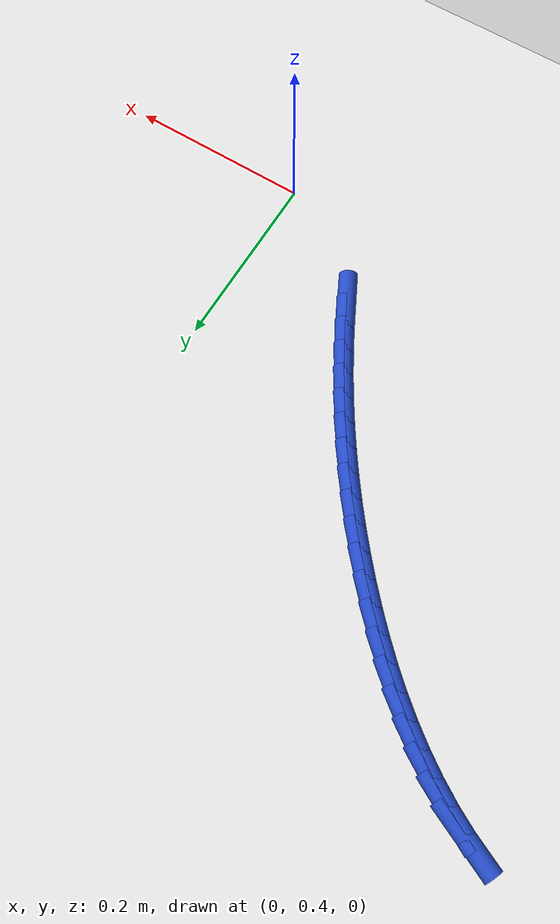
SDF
<sdf version="1.6">
 <world name="default">
  <model name="ground_plane">
   <static>1</static>
   <link name="link">
    <collision name="collision">
     <geometry><plane><normal>0 0 1</normal><size>100 100</size></plane></geometry>
     <surface><friction><ode><mu>100</mu><mu2>50</mu2></ode></friction></surface>
    </collision>
    <visual name="visual">
     <cast_shadows>0</cast_shadows>
     <geometry><plane><normal>0 0 1</normal><size>100 100</size></plane></geometry>
     <material>
      <script><uri>file://media/materials/scripts/gazebo.material</uri><name>Gazebo/WhiteGlow</name></script>
     </material>
    </visual>
   </link>
  </model>
  <model name="line">
   <link name="link_19">
    <pose>-0.12430611511360823 0.4978048859613617 0.01 0 1.57 -1.0902462654132137</pose>
    <collision name="collision">
     <geometry><cylinder><radius>0.01</radius><length>0.08</length></cylinder></geometry>
    </collision>
    <visual name="visual">
     <material>
      <script><name>Gazebo/Blue</name><uri>file://media/materials/scripts/gazebo.material</uri></script>
     </material>
     <geometry><cylinder><radius>0.01</radius><length>0.08</length></cylinder></geometry>
    </visual>
   </link>
   <link name="link_20">
    <pose>-0.13686574547439168 0.5218973179715002 0.01 0 1.57 -1.0674228626646705</pose>
    <collision name="collision">
     <geometry><cylinder><radius>0.01</radius><length>0.08</length></cylinder></geometry>
    </collision>
    <visual name="visual">
     <material>
      <script><name>Gazebo/Blue</name><uri>file://media/materials/scripts/gazebo.material</uri></script>
     </material>
     <geometry><cylinder><radius>0.01</radius><length>0.08</length></cylinder></geometry>
    </visual>
   </link>
   <link name="link_21">
    <pose>-0.14995568107336096 0.5456673432919278 0.01 0 1.57 -1.044369132323076</pose>
    <collision name="collision">
     <geometry><cylinder><radius>0.01</radius><length>0.08</length></cylinder></geometry>
    </collision>
    <visual name="visual">
     <material>
      <script><name>Gazebo/Blue</name><uri>file://media/materials/scripts/gazebo.material</uri></script>
     </material>
     <geometry><cylinder><radius>0.01</radius><length>0.08</length></cylinder></geometry>
    </visual>
   </link>
   <link name="link_22">
    <pose>-0.16357623414456696 0.5691054855569764 0.01 0 1.57 -1.020920529568022</pose>
    <collision name="collision">
     <geometry><cylinder><radius>0.01</radius><length>0.08</length></cylinder></geometry>
    </collision>
    <visual name="visual">
     <material>
      <script><name>Gazebo/Blue</name><uri>file://media/materials/scripts/gazebo.material</uri></script>
     </material>
     <geometry><cylinder><radius>0.01</radius><length>0.08</length></cylinder></geometry>
    </visual>
   </link>
   <link name="link_23">
    <pose>-0.1777366901418348 0.5922082147837116 0.01 0 1.57 -0.9971010919846204</pose>
    <collision name="collision">
     <geometry><cylinder><radius>0.01</radius><length>0.08</length></cylinder></geometry>
    </collision>
    <visual name="visual">
     <material>
      <script><name>Gazebo/Blue</name><uri>file://media/materials/scripts/gazebo.material</uri></script>
     </material>
     <geometry><cylinder><radius>0.01</radius><length>0.08</length></cylinder></geometry>
    </visual>
   </link>
   <link name="link_24">
    <pose>-0.19244665883658618 0.6149722159083256 0.01 0 1.57 -0.9729441683533719</pose>
    <collision name="collision">
     <geometry><cylinder><radius>0.01</radius><length>0.08</length></cylinder></geometry>
    </collision>
    <visual name="visual">
     <material>
      <script><name>Gazebo/Blue</name><uri>file://media/materials/scripts/gazebo.material</uri></script>
     </material>
     <geometry><cylinder><radius>0.01</radius><length>0.08</length></cylinder></geometry>
    </visual>
   </link>
   <link name="link_25">
    <pose>-0.20771575000024242 0.6373941738670104 0.01 0 1.57 -0.9484855985346091</pose>
    <collision name="collision">
     <geometry><cylinder><radius>0.01</radius><length>0.08</length></cylinder></geometry>
    </collision>
    <visual name="visual">
     <material>
      <script><name>Gazebo/Blue</name><uri>file://media/materials/scripts/gazebo.material</uri></script>
     </material>
     <geometry><cylinder><radius>0.01</radius><length>0.08</length></cylinder></geometry>
    </visual>
   </link>
   <link name="link_26">
    <pose>-0.22355357340422538 0.6594707735959585 0.01 0 1.57 -0.9237634932367614</pose>
    <collision name="collision">
     <geometry><cylinder><radius>0.01</radius><length>0.08</length></cylinder></geometry>
    </collision>
    <visual name="visual">
     <material>
      <script><name>Gazebo/Blue</name><uri>file://media/materials/scripts/gazebo.material</uri></script>
     </material>
     <geometry><cylinder><radius>0.01</radius><length>0.08</length></cylinder></geometry>
    </visual>
   </link>
   <link name="link_27">
    <pose>-0.23996973881995637 0.6811987000313618 0.01 0 1.57 -0.8988179671849132</pose>
    <collision name="collision">
     <geometry><cylinder><radius>0.01</radius><length>0.08</length></cylinder></geometry>
    </collision>
    <visual name="visual">
     <material>
      <script><name>Gazebo/Blue</name><uri>file://media/materials/scripts/gazebo.material</uri></script>
     </material>
     <geometry><cylinder><radius>0.01</radius><length>0.08</length></cylinder></geometry>
    </visual>
   </link>
   <link name="link_28">
    <pose>-0.2569738560188572 0.702574638109413 0.01 0 1.57 -0.8736908293880754</pose>
    <collision name="collision">
     <geometry><cylinder><radius>0.01</radius><length>0.08</length></cylinder></geometry>
    </collision>
    <visual name="visual">
     <material>
      <script><name>Gazebo/Blue</name><uri>file://media/materials/scripts/gazebo.material</uri></script>
     </material>
     <geometry><cylinder><radius>0.01</radius><length>0.08</length></cylinder></geometry>
    </visual>
   </link>
   <link name="link_29">
    <pose>-0.2745755347723494 0.7235952727663041 0.01 0 1.57 -0.8484252358404707</pose>
    <collision name="collision">
     <geometry><cylinder><radius>0.01</radius><length>0.08</length></cylinder></geometry>
    </collision>
    <visual name="visual">
     <material>
      <script><name>Gazebo/Blue</name><uri>file://media/materials/scripts/gazebo.material</uri></script>
     </material>
     <geometry><cylinder><radius>0.01</radius><length>0.08</length></cylinder></geometry>
    </visual>
   </link>
   <link name="link_30">
    <pose>-0.29278438485185454 0.7442572889382272 0.01 0 1.57 -0.8226770624096985</pose>
    <collision name="collision">
     <geometry><cylinder><radius>0.01</radius><length>0.08</length></cylinder></geometry>
    </collision>
    <visual name="visual">
     <material>
      <script><name>Gazebo/Blue</name><uri>file://media/materials/scripts/gazebo.material</uri></script>
     </material>
     <geometry><cylinder><radius>0.01</radius><length>0.08</length></cylinder></geometry>
    </visual>
   </link>
   <link name="link_31">
    <pose>-0.3116089252288883 0.7645403950459768 0.01 0 1.57 -0.794368511000852</pose>
    <collision name="collision">
     <geometry><cylinder><radius>0.01</radius><length>0.08</length></cylinder></geometry>
    </collision>
    <visual name="visual">
     <material>
      <script><name>Gazebo/Blue</name><uri>file://media/materials/scripts/gazebo.material</uri></script>
     </material>
     <geometry><cylinder><radius>0.01</radius><length>0.08</length></cylinder></geometry>
    </visual>
   </link>
   <link name="link_32">
    <pose>-0.3310519642243161 0.7843354225786678 0.01 0 1.57 -0.7626220650256759</pose>
    <collision name="collision">
     <geometry><cylinder><radius>0.01</radius><length>0.08</length></cylinder></geometry>
    </collision>
    <visual name="visual">
     <material>
      <script><name>Gazebo/Blue</name><uri>file://media/materials/scripts/gazebo.material</uri></script>
     </material>
     <geometry><cylinder><radius>0.01</radius><length>0.08</length></cylinder></geometry>
    </visual>
   </link>
   <link name="link_33">
    <pose>-0.3511144476446857 0.8035042160381425 0.01 0 1.57 -0.7271717948714365</pose>
    <collision name="collision">
     <geometry><cylinder><radius>0.01</radius><length>0.08</length></cylinder></geometry>
    </collision>
    <visual name="visual">
     <material>
      <script><name>Gazebo/Blue</name><uri>file://media/materials/scripts/gazebo.material</uri></script>
     </material>
     <geometry><cylinder><radius>0.01</radius><length>0.08</length></cylinder></geometry>
    </visual>
   </link>
   <link name="link_34">
    <pose>-0.37179732026817386 0.8219086039213293 0.01 0 1.57 -0.6877252574277032</pose>
    <collision name="collision">
     <geometry><cylinder><radius>0.01</radius><length>0.08</length></cylinder></geometry>
    </collision>
    <visual name="visual">
     <material>
      <script><name>Gazebo/Blue</name><uri>file://media/materials/scripts/gazebo.material</uri></script>
     </material>
     <geometry><cylinder><radius>0.01</radius><length>0.08</length></cylinder></geometry>
    </visual>
   </link>
   <link name="link_35">
    <pose>-0.3931015268729575 0.839410414725156 0.01 0 1.57 -0.6439737413709179</pose>
    <collision name="collision">
     <geometry><cylinder><radius>0.01</radius><length>0.08</length></cylinder></geometry>
    </collision>
    <visual name="visual">
     <material>
      <script><name>Gazebo/Blue</name><uri>file://media/materials/scripts/gazebo.material</uri></script>
     </material>
     <geometry><cylinder><radius>0.01</radius><length>0.08</length></cylinder></geometry>
    </visual>
   </link>
   <link name="link_36">
    <pose>-0.41502801223721314 0.8558714769465512 0.01 0 1.57 -0.5956084304087684</pose>
    <collision name="collision">
     <geometry><cylinder><radius>0.01</radius><length>0.08</length></cylinder></geometry>
    </collision>
    <visual name="visual">
     <material>
      <script><name>Gazebo/Blue</name><uri>file://media/materials/scripts/gazebo.material</uri></script>
     </material>
     <geometry><cylinder><radius>0.01</radius><length>0.08</length></cylinder></geometry>
    </visual>
   </link>
   <link name="link_37">
    <pose>-0.4375777211391178 0.871153619082443 0.01 0 1.57 -0.5423440183714935</pose>
    <collision name="collision">
     <geometry><cylinder><radius>0.01</radius><length>0.08</length></cylinder></geometry>
    </collision>
    <visual name="visual">
     <material>
      <script><name>Gazebo/Blue</name><uri>file://media/materials/scripts/gazebo.material</uri></script>
     </material>
     <geometry><cylinder><radius>0.01</radius><length>0.08</length></cylinder></geometry>
    </visual>
   </link>
   <link name="link_38">
    <pose>-0.46075159835684815 0.8851186696297596 0.01 0 1.57 -0.4839514217598005</pose>
    <collision name="collision">
     <geometry><cylinder><radius>0.01</radius><length>0.08</length></cylinder></geometry>
    </collision>
    <visual name="visual">
     <material>
      <script><name>Gazebo/Blue</name><uri>file://media/materials/scripts/gazebo.material</uri></script>
     </material>
     <geometry><cylinder><radius>0.01</radius><length>0.08</length></cylinder></geometry>
    </visual>
   </link>
   <link name="link_39">
    <pose>-0.4845505886685809 0.897628457085429 0.01 0 1.57 -0.42030517239447834</pose>
    <collision name="collision">
     <geometry><cylinder><radius>0.01</radius><length>0.08</length></cylinder></geometry>
    </collision>
    <visual name="visual">
     <material>
      <script><name>Gazebo/Blue</name><uri>file://media/materials/scripts/gazebo.material</uri></script>
     </material>
     <geometry><cylinder><radius>0.01</radius><length>0.08</length></cylinder></geometry>
    </visual>
   </link>
  </model>
 </world>
</sdf>
